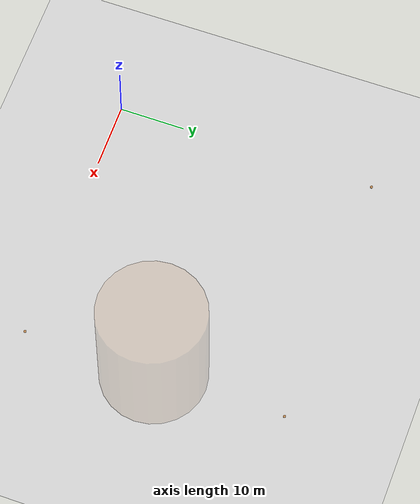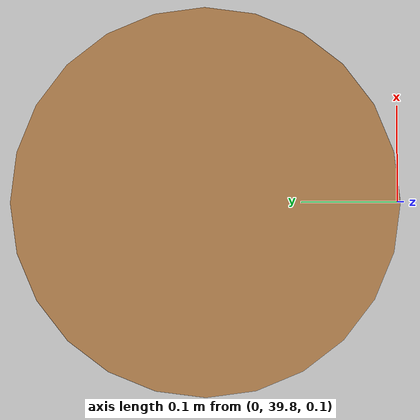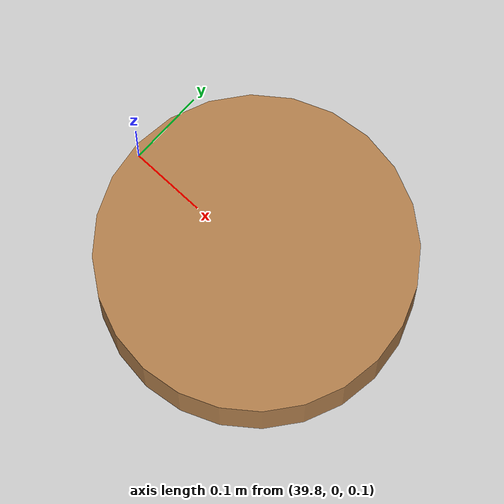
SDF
<sdf version="1.6">
 <world name="default">
  <scene><sky><clouds><speed>5</speed></clouds></sky></scene>
  <include><uri>model://sun</uri></include>
  <include><uri>model://ground_plane</uri><scale>3 3 3</scale></include>
  <physics name="default_physics" default="0" type="ode">
   <gravity>0 0 -9.8066</gravity>
   <ode>
    <solver>
     <type>quick</type>
     <iters>10</iters>
     <sor>1.3</sor>
     <use_dynamic_moi_rescaling>0</use_dynamic_moi_rescaling>
    </solver>
    <constraints>
     <cfm>0</cfm>
     <erp>0.2</erp>
     <contact_max_correcting_vel>100</contact_max_correcting_vel>
     <contact_surface_layer>0.001</contact_surface_layer>
    </constraints>
   </ode>
   <max_step_size>0.004</max_step_size>
   <real_time_factor>1</real_time_factor>
   <real_time_update_rate>250</real_time_update_rate>
   <magnetic_field>6.0e-6 2.3e-5 -4.2e-5</magnetic_field>
  </physics>
  <model name="geofence">
   <static>true</static>
   <pose>40 20 10.1 0 0 0</pose>
   <link name="link">
    <visual name="visual">
     <geometry><cylinder><radius>8</radius><length>20</length></cylinder></geometry>
     <material>
      <script><uri>file://media/materials/scripts/gazebo.material</uri><name>Gazebo/Wood</name></script>
     </material>
     <transparency>0.8</transparency>
    </visual>
   </link>
  </model>
  <model name="right_wall">
   <static>true</static>
   <pose>0 0 0.01 0 0 0</pose>
   <link name="link">
    <visual name="visual">
     <geometry><cylinder><radius>0.2</radius><length>0.01</length></cylinder></geometry>
     <material>
      <script><uri>file://media/materials/scripts/gazebo.material</uri><name>Gazebo/Wood</name></script>
     </material>
    </visual>
   </link>
  </model>
  <model name="right_wall">
   <static>true</static>
   <pose>40 0 0.1 0 0 0</pose>
   <link name="link">
    <visual name="visual">
     <geometry><cylinder><radius>0.2</radius><length>0.1</length></cylinder></geometry>
     <material>
      <script><uri>file://media/materials/scripts/gazebo.material</uri><name>Gazebo/Wood</name></script>
     </material>
    </visual>
   </link>
  </model>
  <model name="right_wall">
   <static>true</static>
   <pose>40 40 0.1 0 0 0</pose>
   <link name="link">
    <visual name="visual">
     <geometry><cylinder><radius>0.2</radius><length>0.1</length></cylinder></geometry>
     <material>
      <script><uri>file://media/materials/scripts/gazebo.material</uri><name>Gazebo/Wood</name></script>
     </material>
    </visual>
   </link>
  </model>
  <model name="right_wall">
   <static>true</static>
   <pose>0 40 0.1 0 0 0</pose>
   <link name="link">
    <visual name="visual">
     <geometry><cylinder><radius>0.2</radius><length>0.1</length></cylinder></geometry>
     <material>
      <script><uri>file://media/materials/scripts/gazebo.material</uri><name>Gazebo/Wood</name></script>
     </material>
    </visual>
   </link>
  </model>
 </world>
</sdf>
